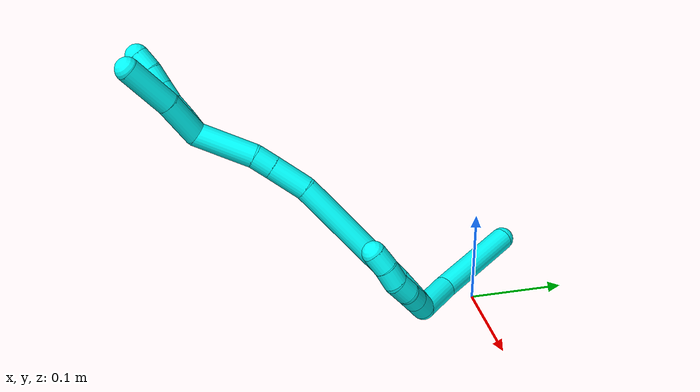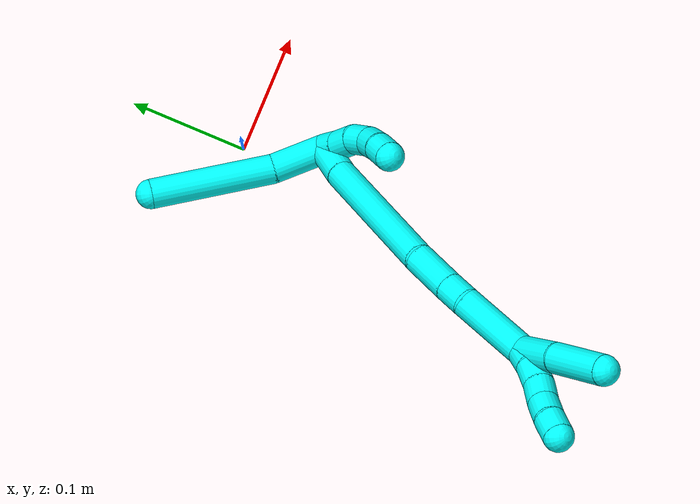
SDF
<sdf version="1.7">
 <world name="default">
  <model name="3">
   <static>0</static>
   <link name="3">
    <collision name="collision-cylinder-e_1_2_8">
     <pose>-0.016166 0.010958 -0.011594 -2.38441 -0.792012 1.62059</pose>
     <geometry><cylinder><radius>0.0125</radius><length>0.045424</length></cylinder></geometry>
     <surface>
      <friction><ode><mu>1.16</mu><mu2>1.16</mu2><slip1>0</slip1><slip2>0</slip2></ode></friction>
      <contact><ode><kp>1e+06</kp><kd>1</kd><max_vel>0</max_vel><min_depth>0.001</min_depth></ode></contact>
     </surface>
    </collision>
    <visual name="visual-cylinder-e_1_2_8">
     <pose>-0.016166 0.010958 -0.011594 -2.38441 -0.792012 1.62059</pose>
     <geometry><cylinder><radius>0.0125</radius><length>0.045424</length></cylinder></geometry>
     <material><ambient>0.003922 1 0.996078 1</ambient></material>
    </visual>
    <collision name="collision-cylinder-e_2_8_6">
     <pose>-0.065058 0.056072 -0.045466 -2.14873 -0.676286 1.1516</pose>
     <geometry><cylinder><radius>0.0125</radius><length>0.104576</length></cylinder></geometry>
     <surface>
      <friction><ode><mu>1.16</mu><mu2>1.16</mu2><slip1>0</slip1><slip2>0</slip2></ode></friction>
      <contact><ode><kp>1e+06</kp><kd>1</kd><max_vel>0</max_vel><min_depth>0.001</min_depth></ode></contact>
     </surface>
    </collision>
    <visual name="visual-cylinder-e_2_8_6">
     <pose>-0.065058 0.056072 -0.045466 -2.14873 -0.676286 1.1516</pose>
     <geometry><cylinder><radius>0.0125</radius><length>0.104576</length></cylinder></geometry>
     <material><ambient>0.003922 1 0.996078 1</ambient></material>
    </visual>
    <collision name="collision-cylinder-e_1_2_9">
     <pose>0.001481 -5.7e-05 0.00989 0.005715 0.148602 0.000425</pose>
     <geometry><cylinder><radius>0.0125</radius><length>0.02</length></cylinder></geometry>
     <surface>
      <friction><ode><mu>1.16</mu><mu2>1.16</mu2><slip1>0</slip1><slip2>0</slip2></ode></friction>
      <contact><ode><kp>1e+06</kp><kd>1</kd><max_vel>0</max_vel><min_depth>0.001</min_depth></ode></contact>
     </surface>
    </collision>
    <visual name="visual-cylinder-e_1_2_9">
     <pose>0.001481 -5.7e-05 0.00989 0.005715 0.148602 0.000425</pose>
     <geometry><cylinder><radius>0.0125</radius><length>0.02</length></cylinder></geometry>
     <material><ambient>0.003922 1 0.996078 1</ambient></material>
    </visual>
    <collision name="collision-cylinder-e_2_9_10">
     <pose>0.005184 0.000108 0.029527 -0.02266 0.224127 -0.00255</pose>
     <geometry><cylinder><radius>0.0125</radius><length>0.02</length></cylinder></geometry>
     <surface>
      <friction><ode><mu>1.16</mu><mu2>1.16</mu2><slip1>0</slip1><slip2>0</slip2></ode></friction>
      <contact><ode><kp>1e+06</kp><kd>1</kd><max_vel>0</max_vel><min_depth>0.001</min_depth></ode></contact>
     </surface>
    </collision>
    <visual name="visual-cylinder-e_2_9_10">
     <pose>0.005184 0.000108 0.029527 -0.02266 0.224127 -0.00255</pose>
     <geometry><cylinder><radius>0.0125</radius><length>0.02</length></cylinder></geometry>
     <material><ambient>0.003922 1 0.996078 1</ambient></material>
    </visual>
    <collision name="collision-cylinder-e_3_10_11">
     <pose>0.00668 -0.00103 0.049155 0.136629 -0.072722 -0.004978</pose>
     <geometry><cylinder><radius>0.0125</radius><length>0.02</length></cylinder></geometry>
     <surface>
      <friction><ode><mu>1.16</mu><mu2>1.16</mu2><slip1>0</slip1><slip2>0</slip2></ode></friction>
      <contact><ode><kp>1e+06</kp><kd>1</kd><max_vel>0</max_vel><min_depth>0.001</min_depth></ode></contact>
     </surface>
    </collision>
    <visual name="visual-cylinder-e_3_10_11">
     <pose>0.00668 -0.00103 0.049155 0.136629 -0.072722 -0.004978</pose>
     <geometry><cylinder><radius>0.0125</radius><length>0.02</length></cylinder></geometry>
     <material><ambient>0.003922 1 0.996078 1</ambient></material>
    </visual>
    <collision name="collision-cylinder-e_4_11_12">
     <pose>0.002598 -0.00217 0.068453 -0.02317 -0.342124 0.004003</pose>
     <geometry><cylinder><radius>0.0125</radius><length>0.02</length></cylinder></geometry>
     <surface>
      <friction><ode><mu>1.16</mu><mu2>1.16</mu2><slip1>0</slip1><slip2>0</slip2></ode></friction>
      <contact><ode><kp>1e+06</kp><kd>1</kd><max_vel>0</max_vel><min_depth>0.001</min_depth></ode></contact>
     </surface>
    </collision>
    <visual name="visual-cylinder-e_4_11_12">
     <pose>0.002598 -0.00217 0.068453 -0.02317 -0.342124 0.004003</pose>
     <geometry><cylinder><radius>0.0125</radius><length>0.02</length></cylinder></geometry>
     <material><ambient>0.003922 1 0.996078 1</ambient></material>
    </visual>
    <collision name="collision-cylinder-e_5_12_5">
     <pose>-0.004858 -0.002984 0.086933 0.113438 -0.422568 -0.024356</pose>
     <geometry><cylinder><radius>0.0125</radius><length>0.02</length></cylinder></geometry>
     <surface>
      <friction><ode><mu>1.16</mu><mu2>1.16</mu2><slip1>0</slip1><slip2>0</slip2></ode></friction>
      <contact><ode><kp>1e+06</kp><kd>1</kd><max_vel>0</max_vel><min_depth>0.001</min_depth></ode></contact>
     </surface>
    </collision>
    <visual name="visual-cylinder-e_5_12_5">
     <pose>-0.004858 -0.002984 0.086933 0.113438 -0.422568 -0.024356</pose>
     <geometry><cylinder><radius>0.0125</radius><length>0.02</length></cylinder></geometry>
     <material><ambient>0.003922 1 0.996078 1</ambient></material>
    </visual>
    <collision name="collision-cylinder-e_1_2_13">
     <pose>-0.01076 -0.003928 0.016014 0.240546 -0.578183 -0.07186</pose>
     <geometry><cylinder><radius>0.0125</radius><length>0.039378</length></cylinder></geometry>
     <surface>
      <friction><ode><mu>1.16</mu><mu2>1.16</mu2><slip1>0</slip1><slip2>0</slip2></ode></friction>
      <contact><ode><kp>1e+06</kp><kd>1</kd><max_vel>0</max_vel><min_depth>0.001</min_depth></ode></contact>
     </surface>
    </collision>
    <visual name="visual-cylinder-e_1_2_13">
     <pose>-0.01076 -0.003928 0.016014 0.240546 -0.578183 -0.07186</pose>
     <geometry><cylinder><radius>0.0125</radius><length>0.039378</length></cylinder></geometry>
     <material><ambient>0.003922 1 0.996078 1</ambient></material>
    </visual>
    <collision name="collision-cylinder-e_2_13_14">
     <pose>-0.053179 -0.023695 0.090211 0.265775 -0.483457 -0.065891</pose>
     <geometry><cylinder><radius>0.0125</radius><length>0.13621</length></cylinder></geometry>
     <surface>
      <friction><ode><mu>1.16</mu><mu2>1.16</mu2><slip1>0</slip1><slip2>0</slip2></ode></friction>
      <contact><ode><kp>1e+06</kp><kd>1</kd><max_vel>0</max_vel><min_depth>0.001</min_depth></ode></contact>
     </surface>
    </collision>
    <visual name="visual-cylinder-e_2_13_14">
     <pose>-0.053179 -0.023695 0.090211 0.265775 -0.483457 -0.065891</pose>
     <geometry><cylinder><radius>0.0125</radius><length>0.13621</length></cylinder></geometry>
     <material><ambient>0.003922 1 0.996078 1</ambient></material>
    </visual>
    <collision name="collision-cylinder-e_3_14_15">
     <pose>-0.093173 -0.048262 0.164407 0.499069 -0.428733 -0.110852</pose>
     <geometry><cylinder><radius>0.0125</radius><length>0.040106</length></cylinder></geometry>
     <surface>
      <friction><ode><mu>1.16</mu><mu2>1.16</mu2><slip1>0</slip1><slip2>0</slip2></ode></friction>
      <contact><ode><kp>1e+06</kp><kd>1</kd><max_vel>0</max_vel><min_depth>0.001</min_depth></ode></contact>
     </surface>
    </collision>
    <visual name="visual-cylinder-e_3_14_15">
     <pose>-0.093173 -0.048262 0.164407 0.499069 -0.428733 -0.110852</pose>
     <geometry><cylinder><radius>0.0125</radius><length>0.040106</length></cylinder></geometry>
     <material><ambient>0.003922 1 0.996078 1</ambient></material>
    </visual>
    <collision name="collision-cylinder-e_4_15_16">
     <pose>-0.105727 -0.061701 0.189125 0.496017 -0.402769 -0.103299</pose>
     <geometry><cylinder><radius>0.0125</radius><length>0.021517</length></cylinder></geometry>
     <surface>
      <friction><ode><mu>1.16</mu><mu2>1.16</mu2><slip1>0</slip1><slip2>0</slip2></ode></friction>
      <contact><ode><kp>1e+06</kp><kd>1</kd><max_vel>0</max_vel><min_depth>0.001</min_depth></ode></contact>
     </surface>
    </collision>
    <visual name="visual-cylinder-e_4_15_16">
     <pose>-0.105727 -0.061701 0.189125 0.496017 -0.402769 -0.103299</pose>
     <geometry><cylinder><radius>0.0125</radius><length>0.021517</length></cylinder></geometry>
     <material><ambient>0.003922 1 0.996078 1</ambient></material>
    </visual>
    <collision name="collision-cylinder-e_5_16_1">
     <pose>-0.120805 -0.085771 0.22003 0.717173 -0.353279 -0.133601</pose>
     <geometry><cylinder><radius>0.0125</radius><length>0.062789</length></cylinder></geometry>
     <surface>
      <friction><ode><mu>1.16</mu><mu2>1.16</mu2><slip1>0</slip1><slip2>0</slip2></ode></friction>
      <contact><ode><kp>1e+06</kp><kd>1</kd><max_vel>0</max_vel><min_depth>0.001</min_depth></ode></contact>
     </surface>
    </collision>
    <visual name="visual-cylinder-e_5_16_1">
     <pose>-0.120805 -0.085771 0.22003 0.717173 -0.353279 -0.133601</pose>
     <geometry><cylinder><radius>0.0125</radius><length>0.062789</length></cylinder></geometry>
     <material><ambient>0.003922 1 0.996078 1</ambient></material>
    </visual>
    <collision name="collision-cylinder-e_1_1_17">
     <pose>-0.137375 -0.106466 0.250331 0.163303 -0.607446 -0.051285</pose>
     <geometry><cylinder><radius>0.0125</radius><length>0.02</length></cylinder></geometry>
     <surface>
      <friction><ode><mu>1.16</mu><mu2>1.16</mu2><slip1>0</slip1><slip2>0</slip2></ode></friction>
      <contact><ode><kp>1e+06</kp><kd>1</kd><max_vel>0</max_vel><min_depth>0.001</min_depth></ode></contact>
     </surface>
    </collision>
    <visual name="visual-cylinder-e_1_1_17">
     <pose>-0.137375 -0.106466 0.250331 0.163303 -0.607446 -0.051285</pose>
     <geometry><cylinder><radius>0.0125</radius><length>0.02</length></cylinder></geometry>
     <material><ambient>0.003922 1 0.996078 1</ambient></material>
    </visual>
    <collision name="collision-cylinder-e_2_17_18">
     <pose>-0.15009 -0.110229 0.265141 0.347263 -0.776445 -0.143222</pose>
     <geometry><cylinder><radius>0.0125</radius><length>0.02</length></cylinder></geometry>
     <surface>
      <friction><ode><mu>1.16</mu><mu2>1.16</mu2><slip1>0</slip1><slip2>0</slip2></ode></friction>
      <contact><ode><kp>1e+06</kp><kd>1</kd><max_vel>0</max_vel><min_depth>0.001</min_depth></ode></contact>
     </surface>
    </collision>
    <visual name="visual-cylinder-e_2_17_18">
     <pose>-0.15009 -0.110229 0.265141 0.347263 -0.776445 -0.143222</pose>
     <geometry><cylinder><radius>0.0125</radius><length>0.02</length></cylinder></geometry>
     <material><ambient>0.003922 1 0.996078 1</ambient></material>
    </visual>
    <collision name="collision-cylinder-e_3_18_19">
     <pose>-0.164601 -0.113871 0.278347 0.18481 -0.848651 -0.083681</pose>
     <geometry><cylinder><radius>0.0125</radius><length>0.02</length></cylinder></geometry>
     <surface>
      <friction><ode><mu>1.16</mu><mu2>1.16</mu2><slip1>0</slip1><slip2>0</slip2></ode></friction>
      <contact><ode><kp>1e+06</kp><kd>1</kd><max_vel>0</max_vel><min_depth>0.001</min_depth></ode></contact>
     </surface>
    </collision>
    <visual name="visual-cylinder-e_3_18_19">
     <pose>-0.164601 -0.113871 0.278347 0.18481 -0.848651 -0.083681</pose>
     <geometry><cylinder><radius>0.0125</radius><length>0.02</length></cylinder></geometry>
     <material><ambient>0.003922 1 0.996078 1</ambient></material>
    </visual>
    <collision name="collision-cylinder-e_4_19_20">
     <pose>-0.178671 -0.115737 0.292359 0.086473 -0.716276 -0.032382</pose>
     <geometry><cylinder><radius>0.0125</radius><length>0.02</length></cylinder></geometry>
     <surface>
      <friction><ode><mu>1.16</mu><mu2>1.16</mu2><slip1>0</slip1><slip2>0</slip2></ode></friction>
      <contact><ode><kp>1e+06</kp><kd>1</kd><max_vel>0</max_vel><min_depth>0.001</min_depth></ode></contact>
     </surface>
    </collision>
    <visual name="visual-cylinder-e_4_19_20">
     <pose>-0.178671 -0.115737 0.292359 0.086473 -0.716276 -0.032382</pose>
     <geometry><cylinder><radius>0.0125</radius><length>0.02</length></cylinder></geometry>
     <material><ambient>0.003922 1 0.996078 1</ambient></material>
    </visual>
    <collision name="collision-cylinder-e_5_20_4">
     <pose>-0.191545 -0.118378 0.307373 0.259217 -0.682612 -0.092529</pose>
     <geometry><cylinder><radius>0.0125</radius><length>0.02</length></cylinder></geometry>
     <surface>
      <friction><ode><mu>1.16</mu><mu2>1.16</mu2><slip1>0</slip1><slip2>0</slip2></ode></friction>
      <contact><ode><kp>1e+06</kp><kd>1</kd><max_vel>0</max_vel><min_depth>0.001</min_depth></ode></contact>
     </surface>
    </collision>
    <visual name="visual-cylinder-e_5_20_4">
     <pose>-0.191545 -0.118378 0.307373 0.259217 -0.682612 -0.092529</pose>
     <geometry><cylinder><radius>0.0125</radius><length>0.02</length></cylinder></geometry>
     <material><ambient>0.003922 1 0.996078 1</ambient></material>
    </visual>
    <collision name="collision-cylinder-e_1_1_21">
     <pose>-0.134233 -0.105893 0.264903 0.033585 -0.112616 -0.001893</pose>
     <geometry><cylinder><radius>0.0125</radius><length>0.045662</length></cylinder></geometry>
     <surface>
      <friction><ode><mu>1.16</mu><mu2>1.16</mu2><slip1>0</slip1><slip2>0</slip2></ode></friction>
      <contact><ode><kp>1e+06</kp><kd>1</kd><max_vel>0</max_vel><min_depth>0.001</min_depth></ode></contact>
     </surface>
    </collision>
    <visual name="visual-cylinder-e_1_1_21">
     <pose>-0.134233 -0.105893 0.264903 0.033585 -0.112616 -0.001893</pose>
     <geometry><cylinder><radius>0.0125</radius><length>0.045662</length></cylinder></geometry>
     <material><ambient>0.003922 1 0.996078 1</ambient></material>
    </visual>
    <collision name="collision-cylinder-e_2_21_3">
     <pose>-0.139529 -0.110932 0.314267 0.158919 -0.100672 -0.008023</pose>
     <geometry><cylinder><radius>0.0125</radius><length>0.054338</length></cylinder></geometry>
     <surface>
      <friction><ode><mu>1.16</mu><mu2>1.16</mu2><slip1>0</slip1><slip2>0</slip2></ode></friction>
      <contact><ode><kp>1e+06</kp><kd>1</kd><max_vel>0</max_vel><min_depth>0.001</min_depth></ode></contact>
     </surface>
    </collision>
    <visual name="visual-cylinder-e_2_21_3">
     <pose>-0.139529 -0.110932 0.314267 0.158919 -0.100672 -0.008023</pose>
     <geometry><cylinder><radius>0.0125</radius><length>0.054338</length></cylinder></geometry>
     <material><ambient>0.003922 1 0.996078 1</ambient></material>
    </visual>
    <collision name="collision-sphere-3">
     <pose>-0.142259 -0.11521 0.340958 0 -0 0</pose>
     <geometry><sphere><radius>0.0125</radius></sphere></geometry>
     <surface>
      <friction><ode><mu>1.16</mu><mu2>1.16</mu2><slip1>0</slip1><slip2>0</slip2></ode></friction>
      <contact><ode><kp>1e+06</kp><kd>1</kd><max_vel>0</max_vel><min_depth>0.001</min_depth></ode></contact>
     </surface>
    </collision>
    <visual name="visual-sphere-3">
     <pose>-0.142259 -0.11521 0.340958 0 -0 0</pose>
     <geometry><sphere><radius>0.0125</radius></sphere></geometry>
     <material><ambient>0.003922 1 0.996078 1</ambient></material>
    </visual>
    <collision name="collision-sphere-21">
     <pose>-0.136798 -0.106655 0.287576 0 -0 0</pose>
     <geometry><sphere><radius>0.0125</radius></sphere></geometry>
     <surface>
      <friction><ode><mu>1.16</mu><mu2>1.16</mu2><slip1>0</slip1><slip2>0</slip2></ode></friction>
      <contact><ode><kp>1e+06</kp><kd>1</kd><max_vel>0</max_vel><min_depth>0.001</min_depth></ode></contact>
     </surface>
    </collision>
    <visual name="visual-sphere-21">
     <pose>-0.136798 -0.106655 0.287576 0 -0 0</pose>
     <geometry><sphere><radius>0.0125</radius></sphere></geometry>
     <material><ambient>0.003922 1 0.996078 1</ambient></material>
    </visual>
    <collision name="collision-sphere-4">
     <pose>-0.197853 -0.120367 0.314873 0 -0 0</pose>
     <geometry><sphere><radius>0.0125</radius></sphere></geometry>
     <surface>
      <friction><ode><mu>1.16</mu><mu2>1.16</mu2><slip1>0</slip1><slip2>0</slip2></ode></friction>
      <contact><ode><kp>1e+06</kp><kd>1</kd><max_vel>0</max_vel><min_depth>0.001</min_depth></ode></contact>
     </surface>
    </collision>
    <visual name="visual-sphere-4">
     <pose>-0.197853 -0.120367 0.314873 0 -0 0</pose>
     <geometry><sphere><radius>0.0125</radius></sphere></geometry>
     <material><ambient>0.003922 1 0.996078 1</ambient></material>
    </visual>
    <collision name="collision-sphere-20">
     <pose>-0.185237 -0.116389 0.299873 0 -0 0</pose>
     <geometry><sphere><radius>0.0125</radius></sphere></geometry>
     <surface>
      <friction><ode><mu>1.16</mu><mu2>1.16</mu2><slip1>0</slip1><slip2>0</slip2></ode></friction>
      <contact><ode><kp>1e+06</kp><kd>1</kd><max_vel>0</max_vel><min_depth>0.001</min_depth></ode></contact>
     </surface>
    </collision>
    <visual name="visual-sphere-20">
     <pose>-0.185237 -0.116389 0.299873 0 -0 0</pose>
     <geometry><sphere><radius>0.0125</radius></sphere></geometry>
     <material><ambient>0.003922 1 0.996078 1</ambient></material>
    </visual>
    <collision name="collision-sphere-11">
     <pose>0.005953 -0.002388 0.059035 0 -0 0</pose>
     <geometry><sphere><radius>0.0125</radius></sphere></geometry>
     <surface>
      <friction><ode><mu>1.16</mu><mu2>1.16</mu2><slip1>0</slip1><slip2>0</slip2></ode></friction>
      <contact><ode><kp>1e+06</kp><kd>1</kd><max_vel>0</max_vel><min_depth>0.001</min_depth></ode></contact>
     </surface>
    </collision>
    <visual name="visual-sphere-11">
     <pose>0.005953 -0.002388 0.059035 0 -0 0</pose>
     <geometry><sphere><radius>0.0125</radius></sphere></geometry>
     <material><ambient>0.003922 1 0.996078 1</ambient></material>
    </visual>
    <collision name="collision-sphere-10">
     <pose>0.007406 0.000329 0.039274 0 -0 0</pose>
     <geometry><sphere><radius>0.0125</radius></sphere></geometry>
     <surface>
      <friction><ode><mu>1.16</mu><mu2>1.16</mu2><slip1>0</slip1><slip2>0</slip2></ode></friction>
      <contact><ode><kp>1e+06</kp><kd>1</kd><max_vel>0</max_vel><min_depth>0.001</min_depth></ode></contact>
     </surface>
    </collision>
    <visual name="visual-sphere-10">
     <pose>0.007406 0.000329 0.039274 0 -0 0</pose>
     <geometry><sphere><radius>0.0125</radius></sphere></geometry>
     <material><ambient>0.003922 1 0.996078 1</ambient></material>
    </visual>
    <collision name="collision-sphere-6">
     <pose>-0.097786 0.090229 -0.067744 0 -0 0</pose>
     <geometry><sphere><radius>0.0125</radius></sphere></geometry>
     <surface>
      <friction><ode><mu>1.16</mu><mu2>1.16</mu2><slip1>0</slip1><slip2>0</slip2></ode></friction>
      <contact><ode><kp>1e+06</kp><kd>1</kd><max_vel>0</max_vel><min_depth>0.001</min_depth></ode></contact>
     </surface>
    </collision>
    <visual name="visual-sphere-6">
     <pose>-0.097786 0.090229 -0.067744 0 -0 0</pose>
     <geometry><sphere><radius>0.0125</radius></sphere></geometry>
     <material><ambient>0.003922 1 0.996078 1</ambient></material>
    </visual>
    <collision name="collision-sphere-9">
     <pose>0.002961 -0.000113 0.019779 0 -0 0</pose>
     <geometry><sphere><radius>0.0125</radius></sphere></geometry>
     <surface>
      <friction><ode><mu>1.16</mu><mu2>1.16</mu2><slip1>0</slip1><slip2>0</slip2></ode></friction>
      <contact><ode><kp>1e+06</kp><kd>1</kd><max_vel>0</max_vel><min_depth>0.001</min_depth></ode></contact>
     </surface>
    </collision>
    <visual name="visual-sphere-9">
     <pose>0.002961 -0.000113 0.019779 0 -0 0</pose>
     <geometry><sphere><radius>0.0125</radius></sphere></geometry>
     <material><ambient>0.003922 1 0.996078 1</ambient></material>
    </visual>
    <collision name="collision-sphere-2">
     <geometry><sphere><radius>0.0125</radius></sphere></geometry>
     <surface>
      <friction><ode><mu>1.16</mu><mu2>1.16</mu2><slip1>0</slip1><slip2>0</slip2></ode></friction>
      <contact><ode><kp>1e+06</kp><kd>1</kd><max_vel>0</max_vel><min_depth>0.001</min_depth></ode></contact>
     </surface>
    </collision>
    <visual name="visual-sphere-2">
     <geometry><sphere><radius>0.0125</radius></sphere></geometry>
     <material><ambient>0.003922 1 0.996078 1</ambient></material>
    </visual>
    <collision name="collision-sphere-19">
     <pose>-0.172105 -0.115086 0.284844 0 -0 0</pose>
     <geometry><sphere><radius>0.0125</radius></sphere></geometry>
     <surface>
      <friction><ode><mu>1.16</mu><mu2>1.16</mu2><slip1>0</slip1><slip2>0</slip2></ode></friction>
      <contact><ode><kp>1e+06</kp><kd>1</kd><max_vel>0</max_vel><min_depth>0.001</min_depth></ode></contact>
     </surface>
    </collision>
    <visual name="visual-sphere-19">
     <pose>-0.172105 -0.115086 0.284844 0 -0 0</pose>
     <geometry><sphere><radius>0.0125</radius></sphere></geometry>
     <material><ambient>0.003922 1 0.996078 1</ambient></material>
    </visual>
    <collision name="collision-sphere-8">
     <pose>-0.032331 0.021916 -0.023189 0 -0 0</pose>
     <geometry><sphere><radius>0.0125</radius></sphere></geometry>
     <surface>
      <friction><ode><mu>1.16</mu><mu2>1.16</mu2><slip1>0</slip1><slip2>0</slip2></ode></friction>
      <contact><ode><kp>1e+06</kp><kd>1</kd><max_vel>0</max_vel><min_depth>0.001</min_depth></ode></contact>
     </surface>
    </collision>
    <visual name="visual-sphere-8">
     <pose>-0.032331 0.021916 -0.023189 0 -0 0</pose>
     <geometry><sphere><radius>0.0125</radius></sphere></geometry>
     <material><ambient>0.003922 1 0.996078 1</ambient></material>
    </visual>
    <collision name="collision-sphere-12">
     <pose>-0.000757 -0.001952 0.077871 0 -0 0</pose>
     <geometry><sphere><radius>0.0125</radius></sphere></geometry>
     <surface>
      <friction><ode><mu>1.16</mu><mu2>1.16</mu2><slip1>0</slip1><slip2>0</slip2></ode></friction>
      <contact><ode><kp>1e+06</kp><kd>1</kd><max_vel>0</max_vel><min_depth>0.001</min_depth></ode></contact>
     </surface>
    </collision>
    <visual name="visual-sphere-12">
     <pose>-0.000757 -0.001952 0.077871 0 -0 0</pose>
     <geometry><sphere><radius>0.0125</radius></sphere></geometry>
     <material><ambient>0.003922 1 0.996078 1</ambient></material>
    </visual>
    <collision name="collision-sphere-5">
     <pose>-0.008959 -0.004016 0.095995 0 -0 0</pose>
     <geometry><sphere><radius>0.0125</radius></sphere></geometry>
     <surface>
      <friction><ode><mu>1.16</mu><mu2>1.16</mu2><slip1>0</slip1><slip2>0</slip2></ode></friction>
      <contact><ode><kp>1e+06</kp><kd>1</kd><max_vel>0</max_vel><min_depth>0.001</min_depth></ode></contact>
     </surface>
    </collision>
    <visual name="visual-sphere-5">
     <pose>-0.008959 -0.004016 0.095995 0 -0 0</pose>
     <geometry><sphere><radius>0.0125</radius></sphere></geometry>
     <material><ambient>0.003922 1 0.996078 1</ambient></material>
    </visual>
    <collision name="collision-sphere-13">
     <pose>-0.02152 -0.007856 0.032028 0 -0 0</pose>
     <geometry><sphere><radius>0.0125</radius></sphere></geometry>
     <surface>
      <friction><ode><mu>1.16</mu><mu2>1.16</mu2><slip1>0</slip1><slip2>0</slip2></ode></friction>
      <contact><ode><kp>1e+06</kp><kd>1</kd><max_vel>0</max_vel><min_depth>0.001</min_depth></ode></contact>
     </surface>
    </collision>
    <visual name="visual-sphere-13">
     <pose>-0.02152 -0.007856 0.032028 0 -0 0</pose>
     <geometry><sphere><radius>0.0125</radius></sphere></geometry>
     <material><ambient>0.003922 1 0.996078 1</ambient></material>
    </visual>
    <collision name="collision-sphere-14">
     <pose>-0.084837 -0.039533 0.148393 0 -0 0</pose>
     <geometry><sphere><radius>0.0125</radius></sphere></geometry>
     <surface>
      <friction><ode><mu>1.16</mu><mu2>1.16</mu2><slip1>0</slip1><slip2>0</slip2></ode></friction>
      <contact><ode><kp>1e+06</kp><kd>1</kd><max_vel>0</max_vel><min_depth>0.001</min_depth></ode></contact>
     </surface>
    </collision>
    <visual name="visual-sphere-14">
     <pose>-0.084837 -0.039533 0.148393 0 -0 0</pose>
     <geometry><sphere><radius>0.0125</radius></sphere></geometry>
     <material><ambient>0.003922 1 0.996078 1</ambient></material>
    </visual>
    <collision name="collision-sphere-15">
     <pose>-0.10151 -0.05699 0.18042 0 -0 0</pose>
     <geometry><sphere><radius>0.0125</radius></sphere></geometry>
     <surface>
      <friction><ode><mu>1.16</mu><mu2>1.16</mu2><slip1>0</slip1><slip2>0</slip2></ode></friction>
      <contact><ode><kp>1e+06</kp><kd>1</kd><max_vel>0</max_vel><min_depth>0.001</min_depth></ode></contact>
     </surface>
    </collision>
    <visual name="visual-sphere-15">
     <pose>-0.10151 -0.05699 0.18042 0 -0 0</pose>
     <geometry><sphere><radius>0.0125</radius></sphere></geometry>
     <material><ambient>0.003922 1 0.996078 1</ambient></material>
    </visual>
    <collision name="collision-sphere-16">
     <pose>-0.109943 -0.066411 0.19783 0 -0 0</pose>
     <geometry><sphere><radius>0.0125</radius></sphere></geometry>
     <surface>
      <friction><ode><mu>1.16</mu><mu2>1.16</mu2><slip1>0</slip1><slip2>0</slip2></ode></friction>
      <contact><ode><kp>1e+06</kp><kd>1</kd><max_vel>0</max_vel><min_depth>0.001</min_depth></ode></contact>
     </surface>
    </collision>
    <visual name="visual-sphere-16">
     <pose>-0.109943 -0.066411 0.19783 0 -0 0</pose>
     <geometry><sphere><radius>0.0125</radius></sphere></geometry>
     <material><ambient>0.003922 1 0.996078 1</ambient></material>
    </visual>
    <collision name="collision-sphere-1">
     <pose>-0.131667 -0.105131 0.242229 0 -0 0</pose>
     <geometry><sphere><radius>0.0125</radius></sphere></geometry>
     <surface>
      <friction><ode><mu>1.16</mu><mu2>1.16</mu2><slip1>0</slip1><slip2>0</slip2></ode></friction>
      <contact><ode><kp>1e+06</kp><kd>1</kd><max_vel>0</max_vel><min_depth>0.001</min_depth></ode></contact>
     </surface>
    </collision>
    <visual name="visual-sphere-1">
     <pose>-0.131667 -0.105131 0.242229 0 -0 0</pose>
     <geometry><sphere><radius>0.0125</radius></sphere></geometry>
     <material><ambient>0.003922 1 0.996078 1</ambient></material>
    </visual>
    <collision name="collision-sphere-18">
     <pose>-0.157097 -0.112657 0.271849 0 -0 0</pose>
     <geometry><sphere><radius>0.0125</radius></sphere></geometry>
     <surface>
      <friction><ode><mu>1.16</mu><mu2>1.16</mu2><slip1>0</slip1><slip2>0</slip2></ode></friction>
      <contact><ode><kp>1e+06</kp><kd>1</kd><max_vel>0</max_vel><min_depth>0.001</min_depth></ode></contact>
     </surface>
    </collision>
    <visual name="visual-sphere-18">
     <pose>-0.157097 -0.112657 0.271849 0 -0 0</pose>
     <geometry><sphere><radius>0.0125</radius></sphere></geometry>
     <material><ambient>0.003922 1 0.996078 1</ambient></material>
    </visual>
    <collision name="collision-sphere-17">
     <pose>-0.143082 -0.107801 0.258433 0 -0 0</pose>
     <geometry><sphere><radius>0.0125</radius></sphere></geometry>
     <surface>
      <friction><ode><mu>1.16</mu><mu2>1.16</mu2><slip1>0</slip1><slip2>0</slip2></ode></friction>
      <contact><ode><kp>1e+06</kp><kd>1</kd><max_vel>0</max_vel><min_depth>0.001</min_depth></ode></contact>
     </surface>
    </collision>
    <visual name="visual-sphere-17">
     <pose>-0.143082 -0.107801 0.258433 0 -0 0</pose>
     <geometry><sphere><radius>0.0125</radius></sphere></geometry>
     <material><ambient>0.003922 1 0.996078 1</ambient></material>
    </visual>
    <inertial>
     <pose>-0.078316 -0.037265 0.125384 0 -0 0</pose>
     <mass>0.75</mass>
     <inertia>
      <ixx>0.00033</ixx>
      <ixy>0</ixy>
      <ixz>0</ixz>
      <iyy>0.000368</iyy>
      <iyz>0</iyz>
      <izz>0.000231</izz>
     </inertia>
    </inertial>
   </link>
   <pose>0.025146 -0.062074 0.0125 0.563558 0.239479 -0.051538</pose>
  </model>
 </world>
</sdf>
